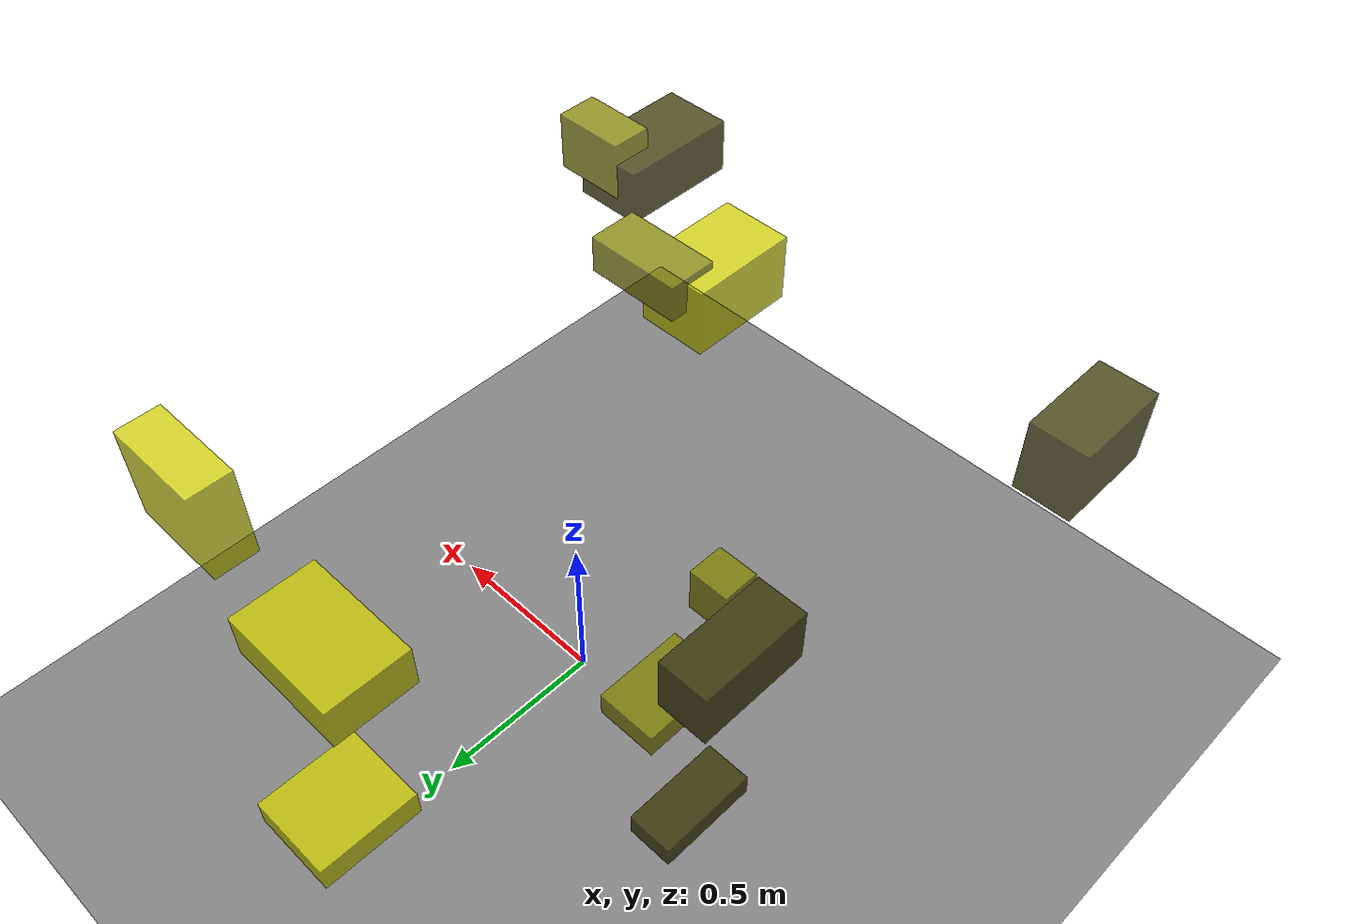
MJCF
<?xml version="1.0"?>
<mujoco model="obstacle_scene">
  <compiler angle="radian" coordinate="local"/>
  <option timestep="0.001" gravity="0 0 -9.81"/>

  <asset>
    <material name="obstacle_mat" rgba="0.8 0.8 0.0 0.8"/>
    <material name="ground_mat" rgba="0.5 0.5 0.5 1"/>
  </asset>

  <worldbody>
    <!-- Ground plane -->
    <geom name="ground" type="plane" size="3 3 0.1" material="ground_mat"/>

    <!-- Obstacles -->
    <body name="obstacle_0" pos="-0.821731 0.316715 1.173116">
      <geom name="obs_0" type="box" size="0.062568 0.140237 0.072327" rgba="0.2 0.2 0.0 0.8"/>
    </body>
    <body name="obstacle_1" pos="0.156708 -0.448406 1.130436">
      <geom name="obs_1" type="box" size="0.142209 0.072011 0.053867" rgba="0.5 0.5 0.0 0.8"/>
    </body>
    <body name="obstacle_2" pos="0.170535 0.681601 0.578230">
      <geom name="obs_2" type="box" size="0.195134 0.128966 0.070504" rgba="0.8 0.8 0.0 0.8"/>
    </body>
    <body name="obstacle_3" pos="-0.910601 -0.841286 0.982614">
      <geom name="obs_3" type="box" size="0.081701 0.145860 0.110430" rgba="0.2 0.2 0.0 0.8"/>
    </body>
    <body name="obstacle_4" pos="0.543041 -0.655337 1.196517">
      <geom name="obs_4" type="box" size="0.105506 0.058648 0.082838" rgba="0.5 0.5 0.0 0.8"/>
    </body>
    <body name="obstacle_5" pos="0.067501 -0.585610 1.063838">
      <geom name="obs_5" type="box" size="0.103158 0.157888 0.099348" rgba="0.8 0.8 0.0 0.8"/>
    </body>
    <body name="obstacle_6" pos="0.474484 -0.773504 1.141338">
      <geom name="obs_6" type="box" size="0.100640 0.173567 0.077558" rgba="0.2 0.2 0.0 0.8"/>
    </body>
    <body name="obstacle_7" pos="-0.364874 0.038496 0.267384">
      <geom name="obs_7" type="box" size="0.093863 0.139700 0.039449" rgba="0.5 0.5 0.0 0.8"/>
    </body>
    <body name="obstacle_8" pos="0.067378 0.807956 0.098874">
      <geom name="obs_8" type="box" size="0.136157 0.154570 0.043952" rgba="0.8 0.8 0.0 0.8"/>
    </body>
    <body name="obstacle_9" pos="-0.581543 0.161812 0.109545">
      <geom name="obs_9" type="box" size="0.068808 0.148494 0.035655" rgba="0.2 0.2 0.0 0.8"/>
    </body>
    <body name="obstacle_10" pos="-0.248490 -0.315473 0.275863">
      <geom name="obs_10" type="box" size="0.068741 0.061024 0.080503" rgba="0.5 0.5 0.0 0.8"/>
    </body>
    <body name="obstacle_11" pos="0.357871 0.796526 1.107839">
      <geom name="obs_11" type="box" size="0.140266 0.058735 0.132816" rgba="0.8 0.8 0.0 0.8"/>
    </body>
  </worldbody>
</mujoco>
